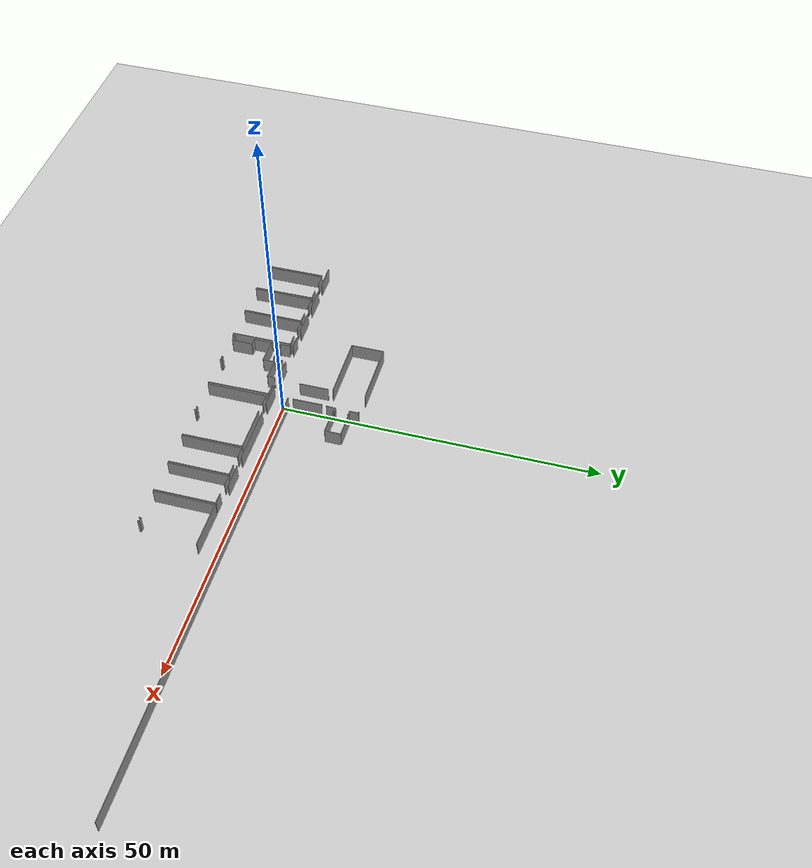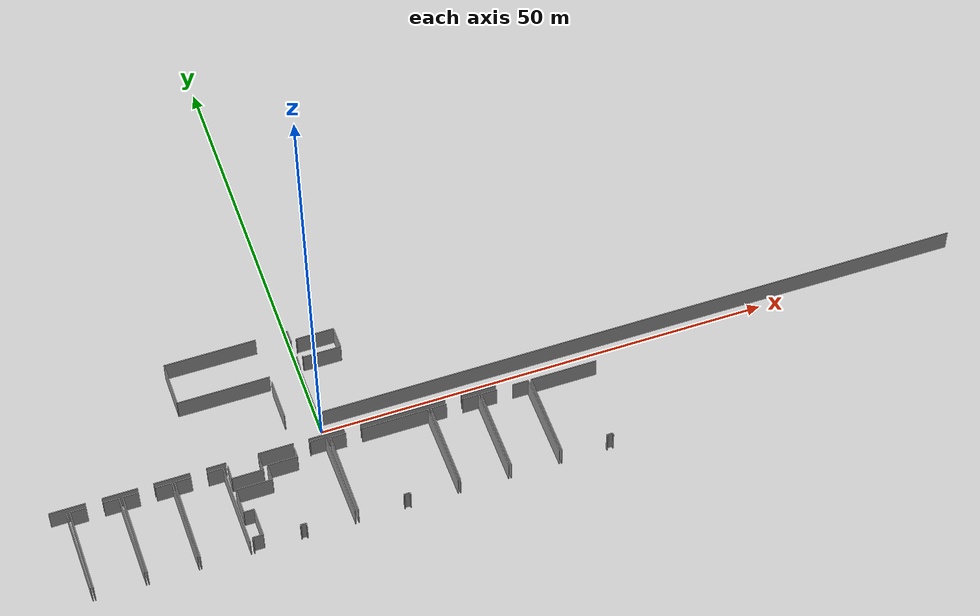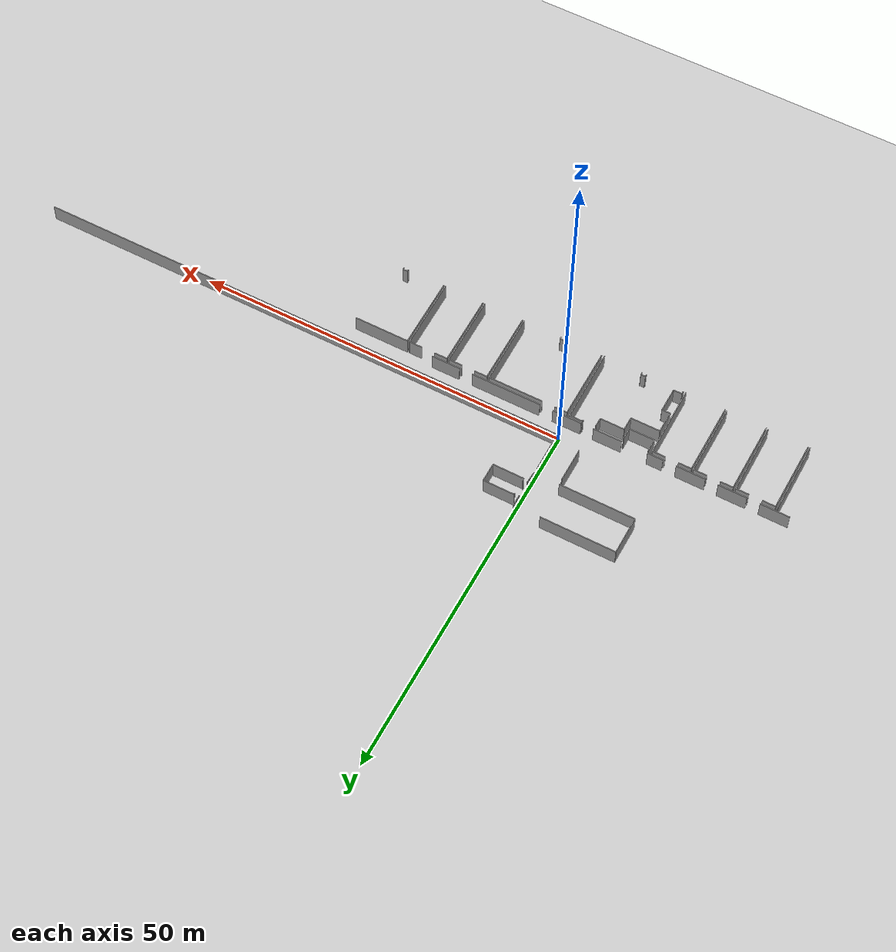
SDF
<sdf version="1.6">
 <world name="default">
  <model name="ground_plane">
   <static>1</static>
   <link name="link">
    <collision name="collision">
     <geometry><plane><normal>0 0 1</normal><size>100 100</size></plane></geometry>
     <surface><friction><ode><mu>100</mu><mu2>50</mu2></ode></friction></surface>
    </collision>
    <visual name="visual">
     <cast_shadows>0</cast_shadows>
     <geometry><plane><normal>0 0 1</normal><size>100 100</size></plane></geometry>
     <material>
      <script><uri>file://media/materials/scripts/gazebo.material</uri><name>Gazebo/Grey</name></script>
     </material>
    </visual>
   </link>
  </model>
  <model name="0510045907_A_40_1_105">
   <static>1</static>
   <link name="Wall_34">
    <collision name="Wall_34_Collision">
     <geometry><box><size>72.8135472733 0.1 2.5</size></box></geometry>
     <pose>36.4067736366 0 1.25 0 0 0</pose>
    </collision>
    <visual name="Wall_34_Visual">
     <pose>36.4067736366 0 1.25 0 0 0</pose>
     <geometry><box><size>72.8135472733 0.1 2.5</size></box></geometry>
     <material>
      <script><uri>file://media/materials/scripts/gazebo.material</uri><name>Gazebo/Grey</name></script>
      <ambient>1 1 1 1</ambient>
     </material>
    </visual>
    <pose>83.46069869 -11.358789479 0 0 0 0.0</pose>
   </link>
   <link name="Wall_45">
    <collision name="Wall_45_Collision">
     <geometry><box><size>3.83924037778 0.1 2.5</size></box></geometry>
     <pose>1.91962018889 0 1.25 0 0 0</pose>
    </collision>
    <visual name="Wall_45_Visual">
     <pose>1.91962018889 0 1.25 0 0 0</pose>
     <geometry><box><size>3.83924037778 0.1 2.5</size></box></geometry>
     <material>
      <script><uri>file://media/materials/scripts/gazebo.material</uri><name>Gazebo/Grey</name></script>
      <ambient>1 1 1 1</ambient>
     </material>
    </visual>
    <pose>102.392353001 -14.2241291764 0 0 0 3.14159265359</pose>
   </link>
   <link name="Wall_46">
    <collision name="Wall_46_Collision">
     <geometry><box><size>9.38153752412 0.1 2.5</size></box></geometry>
     <pose>4.69076876206 0 1.25 0 0 0</pose>
    </collision>
    <visual name="Wall_46_Visual">
     <pose>4.69076876206 0 1.25 0 0 0</pose>
     <geometry><box><size>9.38153752412 0.1 2.5</size></box></geometry>
     <material>
      <script><uri>file://media/materials/scripts/gazebo.material</uri><name>Gazebo/Grey</name></script>
      <ambient>1 1 1 1</ambient>
     </material>
    </visual>
    <pose>96.7500253884 -14.2241291764 0 0 0 3.14159265359</pose>
   </link>
   <link name="Wall_47">
    <collision name="Wall_47_Collision">
     <geometry><box><size>3.90042652585 0.1 2.5</size></box></geometry>
     <pose>1.95021326292 0 1.25 0 0 0</pose>
    </collision>
    <visual name="Wall_47_Visual">
     <pose>1.95021326292 0 1.25 0 0 0</pose>
     <geometry><box><size>3.90042652585 0.1 2.5</size></box></geometry>
     <material>
      <script><uri>file://media/materials/scripts/gazebo.material</uri><name>Gazebo/Grey</name></script>
      <ambient>1 1 1 1</ambient>
     </material>
    </visual>
    <pose>85.5940895704 -14.2241291764 0 0 0 3.14159265359</pose>
   </link>
   <link name="Wall_48">
    <collision name="Wall_48_Collision">
     <geometry><box><size>3.86615212755 0.1 2.5</size></box></geometry>
     <pose>1.93307606378 0 1.25 0 0 0</pose>
    </collision>
    <visual name="Wall_48_Visual">
     <pose>1.93307606378 0 1.25 0 0 0</pose>
     <geometry><box><size>3.86615212755 0.1 2.5</size></box></geometry>
     <material>
      <script><uri>file://media/materials/scripts/gazebo.material</uri><name>Gazebo/Grey</name></script>
      <ambient>1 1 1 1</ambient>
     </material>
    </visual>
    <pose>80.0167563725 -14.2241291764 0 0 0 3.14159265359</pose>
   </link>
   <link name="Wall_49">
    <collision name="Wall_49_Collision">
     <geometry><box><size>2.10343251752 0.1 2.5</size></box></geometry>
     <pose>1.05171625876 0 1.25 0 0 0</pose>
    </collision>
    <visual name="Wall_49_Visual">
     <pose>1.05171625876 0 1.25 0 0 0</pose>
     <geometry><box><size>2.10343251752 0.1 2.5</size></box></geometry>
     <material>
      <script><uri>file://media/materials/scripts/gazebo.material</uri><name>Gazebo/Grey</name></script>
      <ambient>1 1 1 1</ambient>
     </material>
    </visual>
    <pose>72.6784807556 -14.2241291764 0 0 0 3.14159265359</pose>
   </link>
   <link name="Wall_50">
    <collision name="Wall_50_Collision">
     <geometry><box><size>3.9192139738 0.1 2.5</size></box></geometry>
     <pose>1.9596069869 0 1.25 0 0 0</pose>
    </collision>
    <visual name="Wall_50_Visual">
     <pose>1.9596069869 0 1.25 0 0 0</pose>
     <geometry><box><size>3.9192139738 0.1 2.5</size></box></geometry>
     <material>
      <script><uri>file://media/materials/scripts/gazebo.material</uri><name>Gazebo/Grey</name></script>
      <ambient>1 1 1 1</ambient>
     </material>
    </visual>
    <pose>68.814105819 -14.2241291764 0 0 0 3.14159265359</pose>
   </link>
   <link name="Wall_51">
    <collision name="Wall_51_Collision">
     <geometry><box><size>3.83949426221 0.1 2.5</size></box></geometry>
     <pose>1.91974713111 0 1.25 0 0 0</pose>
    </collision>
    <visual name="Wall_51_Visual">
     <pose>1.91974713111 0 1.25 0 0 0</pose>
     <geometry><box><size>3.83949426221 0.1 2.5</size></box></geometry>
     <material>
      <script><uri>file://media/materials/scripts/gazebo.material</uri><name>Gazebo/Grey</name></script>
      <ambient>1 1 1 1</ambient>
     </material>
    </visual>
    <pose>63.2131613689 -14.2241291764 0 0 0 3.14159265359</pose>
   </link>
   <link name="Wall_52">
    <collision name="Wall_52_Collision">
     <geometry><box><size>3.90474256119 0.1 2.5</size></box></geometry>
     <pose>1.95237128059 0 1.25 0 0 0</pose>
    </collision>
    <visual name="Wall_52_Visual">
     <pose>1.95237128059 0 1.25 0 0 0</pose>
     <geometry><box><size>3.90474256119 0.1 2.5</size></box></geometry>
     <material>
      <script><uri>file://media/materials/scripts/gazebo.material</uri><name>Gazebo/Grey</name></script>
      <ambient>1 1 1 1</ambient>
     </material>
    </visual>
    <pose>57.6368437087 -14.2241291764 0 0 0 3.14159265359</pose>
   </link>
   <link name="Wall_90">
    <collision name="Wall_90_Collision">
     <geometry><box><size>9.59455603159 0.1 2.5</size></box></geometry>
     <pose>4.79727801579 0 1.25 0 0 0</pose>
    </collision>
    <visual name="Wall_90_Visual">
     <pose>4.79727801579 0 1.25 0 0 0</pose>
     <geometry><box><size>9.59455603159 0.1 2.5</size></box></geometry>
     <material>
      <script><uri>file://media/materials/scripts/gazebo.material</uri><name>Gazebo/Grey</name></script>
      <ambient>1 1 1 1</ambient>
     </material>
    </visual>
    <pose>55.5133543211 -14.7778511222 0 0 0 -1.56338709482</pose>
   </link>
   <link name="Wall_91">
    <collision name="Wall_91_Collision">
     <geometry><box><size>9.57753630547 0.1 2.5</size></box></geometry>
     <pose>4.78876815274 0 1.25 0 0 0</pose>
    </collision>
    <visual name="Wall_91_Visual">
     <pose>4.78876815274 0 1.25 0 0 0</pose>
     <geometry><box><size>9.57753630547 0.1 2.5</size></box></geometry>
     <material>
      <script><uri>file://media/materials/scripts/gazebo.material</uri><name>Gazebo/Grey</name></script>
      <ambient>1 1 1 1</ambient>
     </material>
    </visual>
    <pose>55.8515283843 -24.3553874276 0 0 0 1.57079632679</pose>
   </link>
   <link name="Wall_92">
    <collision name="Wall_92_Collision">
     <geometry><box><size>1.74926373515 0.1 2.5</size></box></geometry>
     <pose>0.874631867574 0 1.25 0 0 0</pose>
    </collision>
    <visual name="Wall_92_Visual">
     <pose>0.874631867574 0 1.25 0 0 0</pose>
     <geometry><box><size>1.74926373515 0.1 2.5</size></box></geometry>
     <material>
      <script><uri>file://media/materials/scripts/gazebo.material</uri><name>Gazebo/Grey</name></script>
      <ambient>1 1 1 1</ambient>
     </material>
    </visual>
    <pose>55.8515283843 -14.7778511222 0 0 0 0.0</pose>
   </link>
   <link name="Wall_93">
    <collision name="Wall_93_Collision">
     <geometry><box><size>1.72742967401 0.1 2.5</size></box></geometry>
     <pose>0.863714837006 0 1.25 0 0 0</pose>
    </collision>
    <visual name="Wall_93_Visual">
     <pose>0.863714837006 0 1.25 0 0 0</pose>
     <geometry><box><size>1.72742967401 0.1 2.5</size></box></geometry>
     <material>
      <script><uri>file://media/materials/scripts/gazebo.material</uri><name>Gazebo/Grey</name></script>
      <ambient>1 1 1 1</ambient>
     </material>
    </visual>
    <pose>59.3642733828 -14.7778511222 0 0 0 0.0</pose>
   </link>
   <link name="Wall_94">
    <collision name="Wall_94_Collision">
     <geometry><box><size>9.5780746944 0.1 2.5</size></box></geometry>
     <pose>4.7890373472 0 1.25 0 0 0</pose>
    </collision>
    <visual name="Wall_94_Visual">
     <pose>4.7890373472 0 1.25 0 0 0</pose>
     <geometry><box><size>9.5780746944 0.1 2.5</size></box></geometry>
     <material>
      <script><uri>file://media/materials/scripts/gazebo.material</uri><name>Gazebo/Grey</name></script>
      <ambient>1 1 1 1</ambient>
     </material>
    </visual>
    <pose>61.0917030568 -14.7778511222 0 0 0 -1.5601933947</pose>
   </link>
   <link name="Wall_95">
    <collision name="Wall_95_Collision">
     <geometry><box><size>9.60368640195 0.1 2.5</size></box></geometry>
     <pose>4.80184320097 0 1.25 0 0 0</pose>
    </collision>
    <visual name="Wall_95_Visual">
     <pose>4.80184320097 0 1.25 0 0 0</pose>
     <geometry><box><size>9.60368640195 0.1 2.5</size></box></geometry>
     <material>
      <script><uri>file://media/materials/scripts/gazebo.material</uri><name>Gazebo/Grey</name></script>
      <ambient>1 1 1 1</ambient>
     </material>
    </visual>
    <pose>61.4661825937 -24.3815375241 0 0 0 1.57079632679</pose>
   </link>
   <link name="Wall_96">
    <collision name="Wall_96_Collision">
     <geometry><box><size>1.69899461765 0.1 2.5</size></box></geometry>
     <pose>0.849497308825 0 1.25 0 0 0</pose>
    </collision>
    <visual name="Wall_96_Visual">
     <pose>0.849497308825 0 1.25 0 0 0</pose>
     <geometry><box><size>1.69899461765 0.1 2.5</size></box></geometry>
     <material>
      <script><uri>file://media/materials/scripts/gazebo.material</uri><name>Gazebo/Grey</name></script>
      <ambient>1 1 1 1</ambient>
     </material>
    </visual>
    <pose>61.4661825937 -14.7778511222 0 0 0 0.0</pose>
   </link>
   <link name="Wall_97">
    <collision name="Wall_97_Collision">
     <geometry><box><size>1.82085914492 0.1 2.5</size></box></geometry>
     <pose>0.910429572459 0 1.25 0 0 0</pose>
    </collision>
    <visual name="Wall_97_Visual">
     <pose>0.910429572459 0 1.25 0 0 0</pose>
     <geometry><box><size>1.82085914492 0.1 2.5</size></box></geometry>
     <material>
      <script><uri>file://media/materials/scripts/gazebo.material</uri><name>Gazebo/Grey</name></script>
      <ambient>1 1 1 1</ambient>
     </material>
    </visual>
    <pose>64.9276429369 -14.7778511222 0 0 0 0.0</pose>
   </link>
   <link name="Wall_98">
    <collision name="Wall_98_Collision">
     <geometry><box><size>9.60370527866 0.1 2.5</size></box></geometry>
     <pose>4.80185263933 0 1.25 0 0 0</pose>
    </collision>
    <visual name="Wall_98_Visual">
     <pose>4.80185263933 0 1.25 0 0 0</pose>
     <geometry><box><size>9.60370527866 0.1 2.5</size></box></geometry>
     <material>
      <script><uri>file://media/materials/scripts/gazebo.material</uri><name>Gazebo/Grey</name></script>
      <ambient>1 1 1 1</ambient>
     </material>
    </visual>
    <pose>66.7485020819 -14.7778511222 0 0 0 -1.56881361863</pose>
   </link>
   <link name="Wall_99">
    <collision name="Wall_99_Collision">
     <geometry><box><size>9.62196608104 0.1 2.5</size></box></geometry>
     <pose>4.81098304052 0 1.25 0 0 0</pose>
    </collision>
    <visual name="Wall_99_Visual">
     <pose>4.81098304052 0 1.25 0 0 0</pose>
     <geometry><box><size>9.62196608104 0.1 2.5</size></box></geometry>
     <material>
      <script><uri>file://media/materials/scripts/gazebo.material</uri><name>Gazebo/Grey</name></script>
      <ambient>1 1 1 1</ambient>
     </material>
    </visual>
    <pose>67.027267188 -24.3889001726 0 0 0 1.57079632679</pose>
   </link>
   <link name="Wall_100">
    <collision name="Wall_100_Collision">
     <geometry><box><size>1.75357977049 0.1 2.5</size></box></geometry>
     <pose>0.876789885244 0 1.25 0 0 0</pose>
    </collision>
    <visual name="Wall_100_Visual">
     <pose>0.876789885244 0 1.25 0 0 0</pose>
     <geometry><box><size>1.75357977049 0.1 2.5</size></box></geometry>
     <material>
      <script><uri>file://media/materials/scripts/gazebo.material</uri><name>Gazebo/Grey</name></script>
      <ambient>1 1 1 1</ambient>
     </material>
    </visual>
    <pose>67.027267188 -14.7669340916 0 0 0 0.0</pose>
   </link>
   <link name="Wall_101">
    <collision name="Wall_101_Collision">
     <geometry><box><size>1.74190108663 0.1 2.5</size></box></geometry>
     <pose>0.870950543313 0 1.25 0 0 0</pose>
    </collision>
    <visual name="Wall_101_Visual">
     <pose>0.870950543313 0 1.25 0 0 0</pose>
     <geometry><box><size>1.74190108663 0.1 2.5</size></box></geometry>
     <material>
      <script><uri>file://media/materials/scripts/gazebo.material</uri><name>Gazebo/Grey</name></script>
      <ambient>1 1 1 1</ambient>
     </material>
    </visual>
    <pose>70.5100538235 -14.7669340916 0 0 0 0.0</pose>
   </link>
   <link name="Wall_102">
    <collision name="Wall_102_Collision">
     <geometry><box><size>9.62226552389 0.1 2.5</size></box></geometry>
     <pose>4.81113276194 0 1.25 0 0 0</pose>
    </collision>
    <visual name="Wall_102_Visual">
     <pose>4.81113276194 0 1.25 0 0 0</pose>
     <geometry><box><size>9.62226552389 0.1 2.5</size></box></geometry>
     <material>
      <script><uri>file://media/materials/scripts/gazebo.material</uri><name>Gazebo/Grey</name></script>
      <ambient>1 1 1 1</ambient>
     </material>
    </visual>
    <pose>72.2519549101 -14.7669340916 0 0 0 -1.56290710025</pose>
   </link>
   <link name="Wall_103">
    <collision name="Wall_103_Collision">
     <geometry><box><size>0.290443789987 0.1 2.5</size></box></geometry>
     <pose>0.145221894993 0 1.25 0 0 0</pose>
    </collision>
    <visual name="Wall_103_Visual">
     <pose>0.145221894993 0 1.25 0 0 0</pose>
     <geometry><box><size>0.290443789987 0.1 2.5</size></box></geometry>
     <material>
      <script><uri>file://media/materials/scripts/gazebo.material</uri><name>Gazebo/Grey</name></script>
      <ambient>1 1 1 1</ambient>
     </material>
    </visual>
    <pose>78.3802173251 -24.4252056464 0 0 0 1.57079632679</pose>
   </link>
   <link name="Wall_104">
    <collision name="Wall_104_Collision">
     <geometry><box><size>0.609576520768 0.1 2.5</size></box></geometry>
     <pose>0.304788260384 0 1.25 0 0 0</pose>
    </collision>
    <visual name="Wall_104_Visual">
     <pose>0.304788260384 0 1.25 0 0 0</pose>
     <geometry><box><size>0.609576520768 0.1 2.5</size></box></geometry>
     <material>
      <script><uri>file://media/materials/scripts/gazebo.material</uri><name>Gazebo/Grey</name></script>
      <ambient>1 1 1 1</ambient>
     </material>
    </visual>
    <pose>78.3802173251 -24.1347618564 0 0 0 3.14159265359</pose>
   </link>
   <link name="Wall_105">
    <collision name="Wall_105_Collision">
     <geometry><box><size>0.246775667716 0.1 2.5</size></box></geometry>
     <pose>0.123387833858 0 1.25 0 0 0</pose>
    </collision>
    <visual name="Wall_105_Visual">
     <pose>0.123387833858 0 1.25 0 0 0</pose>
     <geometry><box><size>0.246775667716 0.1 2.5</size></box></geometry>
     <material>
      <script><uri>file://media/materials/scripts/gazebo.material</uri><name>Gazebo/Grey</name></script>
      <ambient>1 1 1 1</ambient>
     </material>
    </visual>
    <pose>77.7706408043 -24.1347618564 0 0 0 -1.57079632679</pose>
   </link>
   <link name="Wall_106">
    <collision name="Wall_106_Collision">
     <geometry><box><size>0.399614095664 0.1 2.5</size></box></geometry>
     <pose>0.199807047832 0 1.25 0 0 0</pose>
    </collision>
    <visual name="Wall_106_Visual">
     <pose>0.199807047832 0 1.25 0 0 0</pose>
     <geometry><box><size>0.399614095664 0.1 2.5</size></box></geometry>
     <material>
      <script><uri>file://media/materials/scripts/gazebo.material</uri><name>Gazebo/Grey</name></script>
      <ambient>1 1 1 1</ambient>
     </material>
    </visual>
    <pose>72.6909210927 -24.3815375241 0 0 0 1.57079632679</pose>
   </link>
   <link name="Wall_107">
    <collision name="Wall_107_Collision">
     <geometry><box><size>1.14501878745 0.1 2.5</size></box></geometry>
     <pose>0.572509393724 0 1.25 0 0 0</pose>
    </collision>
    <visual name="Wall_107_Visual">
     <pose>0.572509393724 0 1.25 0 0 0</pose>
     <geometry><box><size>1.14501878745 0.1 2.5</size></box></geometry>
     <material>
      <script><uri>file://media/materials/scripts/gazebo.material</uri><name>Gazebo/Grey</name></script>
      <ambient>1 1 1 1</ambient>
     </material>
    </visual>
    <pose>72.6909210927 -23.9819234285 0 0 0 0.0</pose>
   </link>
   <link name="Wall_108">
    <collision name="Wall_108_Collision">
     <geometry><box><size>3.27079313496 0.1 2.5</size></box></geometry>
     <pose>1.63539656748 0 1.25 0 0 0</pose>
    </collision>
    <visual name="Wall_108_Visual">
     <pose>1.63539656748 0 1.25 0 0 0</pose>
     <geometry><box><size>3.27079313496 0.1 2.5</size></box></geometry>
     <material>
      <script><uri>file://media/materials/scripts/gazebo.material</uri><name>Gazebo/Grey</name></script>
      <ambient>1 1 1 1</ambient>
     </material>
    </visual>
    <pose>73.8359398802 -23.9819234285 0 0 0 1.57079632679</pose>
   </link>
   <link name="Wall_109">
    <collision name="Wall_109_Collision">
     <geometry><box><size>1.10719000711 0.1 2.5</size></box></geometry>
     <pose>0.553595003554 0 1.25 0 0 0</pose>
    </collision>
    <visual name="Wall_109_Visual">
     <pose>0.553595003554 0 1.25 0 0 0</pose>
     <geometry><box><size>1.10719000711 0.1 2.5</size></box></geometry>
     <material>
      <script><uri>file://media/materials/scripts/gazebo.material</uri><name>Gazebo/Grey</name></script>
      <ambient>1 1 1 1</ambient>
     </material>
    </visual>
    <pose>73.8359398802 -20.7111302935 0 0 0 3.14159265359</pose>
   </link>
   <link name="Wall_110">
    <collision name="Wall_110_Collision">
     <geometry><box><size>2.90773839748 0.1 2.5</size></box></geometry>
     <pose>1.45386919874 0 1.25 0 0 0</pose>
    </collision>
    <visual name="Wall_110_Visual">
     <pose>1.45386919874 0 1.25 0 0 0</pose>
     <geometry><box><size>2.90773839748 0.1 2.5</size></box></geometry>
     <material>
      <script><uri>file://media/materials/scripts/gazebo.material</uri><name>Gazebo/Grey</name></script>
      <ambient>1 1 1 1</ambient>
     </material>
    </visual>
    <pose>72.7287498731 -20.7111302935 0 0 0 1.57079632679</pose>
   </link>
   <link name="Wall_111">
    <collision name="Wall_111_Collision">
     <geometry><box><size>3.94104803493 0.1 2.5</size></box></geometry>
     <pose>1.97052401747 0 1.25 0 0 0</pose>
    </collision>
    <visual name="Wall_111_Visual">
     <pose>1.97052401747 0 1.25 0 0 0</pose>
     <geometry><box><size>3.94104803493 0.1 2.5</size></box></geometry>
     <material>
      <script><uri>file://media/materials/scripts/gazebo.material</uri><name>Gazebo/Grey</name></script>
      <ambient>1 1 1 1</ambient>
     </material>
    </visual>
    <pose>72.7287498731 -17.803391896 0 0 0 0.0</pose>
   </link>
   <link name="Wall_112">
    <collision name="Wall_112_Collision">
     <geometry><box><size>1.85589519651 0.1 2.5</size></box></geometry>
     <pose>0.927947598253 0 1.25 0 0 0</pose>
    </collision>
    <visual name="Wall_112_Visual">
     <pose>0.927947598253 0 1.25 0 0 0</pose>
     <geometry><box><size>1.85589519651 0.1 2.5</size></box></geometry>
     <material>
      <script><uri>file://media/materials/scripts/gazebo.material</uri><name>Gazebo/Grey</name></script>
      <ambient>1 1 1 1</ambient>
     </material>
    </visual>
    <pose>76.669797908 -17.803391896 0 0 0 1.57079632679</pose>
   </link>
   <link name="Wall_113">
    <collision name="Wall_113_Collision">
     <geometry><box><size>3.2654615619 0.1 2.5</size></box></geometry>
     <pose>1.63273078095 0 1.25 0 0 0</pose>
    </collision>
    <visual name="Wall_113_Visual">
     <pose>1.63273078095 0 1.25 0 0 0</pose>
     <geometry><box><size>3.2654615619 0.1 2.5</size></box></geometry>
     <material>
      <script><uri>file://media/materials/scripts/gazebo.material</uri><name>Gazebo/Grey</name></script>
      <ambient>1 1 1 1</ambient>
     </material>
    </visual>
    <pose>76.669797908 -15.9474966995 0 0 0 0.0</pose>
   </link>
   <link name="Wall_114">
    <collision name="Wall_114_Collision">
     <geometry><box><size>1.20747435767 0.1 2.5</size></box></geometry>
     <pose>0.603737178836 0 1.25 0 0 0</pose>
    </collision>
    <visual name="Wall_114_Visual">
     <pose>0.603737178836 0 1.25 0 0 0</pose>
     <geometry><box><size>1.20747435767 0.1 2.5</size></box></geometry>
     <material>
      <script><uri>file://media/materials/scripts/gazebo.material</uri><name>Gazebo/Grey</name></script>
      <ambient>1 1 1 1</ambient>
     </material>
    </visual>
    <pose>79.9352594699 -15.9474966995 0 0 0 1.57079632679</pose>
   </link>
   <link name="Wall_115">
    <collision name="Wall_115_Collision">
     <geometry><box><size>0.174926373515 0.1 2.5</size></box></geometry>
     <pose>0.0874631867574 0 1.25 0 0 0</pose>
    </collision>
    <visual name="Wall_115_Visual">
     <pose>0.0874631867574 0 1.25 0 0 0</pose>
     <geometry><box><size>0.174926373515 0.1 2.5</size></box></geometry>
     <material>
      <script><uri>file://media/materials/scripts/gazebo.material</uri><name>Gazebo/Grey</name></script>
      <ambient>1 1 1 1</ambient>
     </material>
    </visual>
    <pose>81.680968823 -14.7400223418 0 0 0 1.57079632679</pose>
   </link>
   <link name="Wall_116">
    <collision name="Wall_116_Collision">
     <geometry><box><size>1.75459530822 0.1 2.5</size></box></geometry>
     <pose>0.877297654108 0 1.25 0 0 0</pose>
    </collision>
    <visual name="Wall_116_Visual">
     <pose>0.877297654108 0 1.25 0 0 0</pose>
     <geometry><box><size>1.75459530822 0.1 2.5</size></box></geometry>
     <material>
      <script><uri>file://media/materials/scripts/gazebo.material</uri><name>Gazebo/Grey</name></script>
      <ambient>1 1 1 1</ambient>
     </material>
    </visual>
    <pose>81.680968823 -14.5650959683 0 0 0 0.0</pose>
   </link>
   <link name="Wall_117">
    <collision name="Wall_117_Collision">
     <geometry><box><size>9.86092679163 0.1 2.5</size></box></geometry>
     <pose>4.93046339581 0 1.25 0 0 0</pose>
    </collision>
    <visual name="Wall_117_Visual">
     <pose>4.93046339581 0 1.25 0 0 0</pose>
     <geometry><box><size>9.86092679163 0.1 2.5</size></box></geometry>
     <material>
      <script><uri>file://media/materials/scripts/gazebo.material</uri><name>Gazebo/Grey</name></script>
      <ambient>1 1 1 1</ambient>
     </material>
    </visual>
    <pose>83.4355641312 -14.5650959683 0 0 0 -1.55792271714</pose>
   </link>
   <link name="Wall_118">
    <collision name="Wall_118_Collision">
     <geometry><box><size>3.40890626587 0.1 2.5</size></box></geometry>
     <pose>1.70445313293 0 1.25 0 0 0</pose>
    </collision>
    <visual name="Wall_118_Visual">
     <pose>1.70445313293 0 1.25 0 0 0</pose>
     <geometry><box><size>3.40890626587 0.1 2.5</size></box></geometry>
     <material>
      <script><uri>file://media/materials/scripts/gazebo.material</uri><name>Gazebo/Grey</name></script>
      <ambient>1 1 1 1</ambient>
     </material>
    </visual>
    <pose>72.7284959886 -16.3092820148 0 0 0 0.0</pose>
   </link>
   <link name="Wall_119">
    <collision name="Wall_119_Collision">
     <geometry><box><size>1.62409871027 0.1 2.5</size></box></geometry>
     <pose>0.812049355134 0 1.25 0 0 0</pose>
    </collision>
    <visual name="Wall_119_Visual">
     <pose>0.812049355134 0 1.25 0 0 0</pose>
     <geometry><box><size>1.62409871027 0.1 2.5</size></box></geometry>
     <material>
      <script><uri>file://media/materials/scripts/gazebo.material</uri><name>Gazebo/Grey</name></script>
      <ambient>1 1 1 1</ambient>
     </material>
    </visual>
    <pose>76.1374022545 -16.3092820148 0 0 0 1.57079632679</pose>
   </link>
   <link name="Wall_120">
    <collision name="Wall_120_Collision">
     <geometry><box><size>1.62445499047 0.1 2.5</size></box></geometry>
     <pose>0.812227495234 0 1.25 0 0 0</pose>
    </collision>
    <visual name="Wall_120_Visual">
     <pose>0.812227495234 0 1.25 0 0 0</pose>
     <geometry><box><size>1.62445499047 0.1 2.5</size></box></geometry>
     <material>
      <script><uri>file://media/materials/scripts/gazebo.material</uri><name>Gazebo/Grey</name></script>
      <ambient>1 1 1 1</ambient>
     </material>
    </visual>
    <pose>72.7625165025 -14.6851833046 0 0 0 -1.59174058283</pose>
   </link>
   <link name="Wall_121">
    <collision name="Wall_121_Collision">
     <geometry><box><size>0.249568396466 0.1 2.5</size></box></geometry>
     <pose>0.124784198233 0 1.25 0 0 0</pose>
    </collision>
    <visual name="Wall_121_Visual">
     <pose>0.124784198233 0 1.25 0 0 0</pose>
     <geometry><box><size>0.249568396466 0.1 2.5</size></box></geometry>
     <material>
      <script><uri>file://media/materials/scripts/gazebo.material</uri><name>Gazebo/Grey</name></script>
      <ambient>1 1 1 1</ambient>
     </material>
    </visual>
    <pose>89.5963237534 -24.3754442978 0 0 0 1.57079632679</pose>
   </link>
   <link name="Wall_122">
    <collision name="Wall_122_Collision">
     <geometry><box><size>0.652736874175 0.1 2.5</size></box></geometry>
     <pose>0.326368437087 0 1.25 0 0 0</pose>
    </collision>
    <visual name="Wall_122_Visual">
     <pose>0.326368437087 0 1.25 0 0 0</pose>
     <geometry><box><size>0.652736874175 0.1 2.5</size></box></geometry>
     <material>
      <script><uri>file://media/materials/scripts/gazebo.material</uri><name>Gazebo/Grey</name></script>
      <ambient>1 1 1 1</ambient>
     </material>
    </visual>
    <pose>89.5963237534 -24.1258759013 0 0 0 3.14159265359</pose>
   </link>
   <link name="Wall_123">
    <collision name="Wall_123_Collision">
     <geometry><box><size>0.218340611354 0.1 2.5</size></box></geometry>
     <pose>0.109170305677 0 1.25 0 0 0</pose>
    </collision>
    <visual name="Wall_123_Visual">
     <pose>0.109170305677 0 1.25 0 0 0</pose>
     <geometry><box><size>0.218340611354 0.1 2.5</size></box></geometry>
     <material>
      <script><uri>file://media/materials/scripts/gazebo.material</uri><name>Gazebo/Grey</name></script>
      <ambient>1 1 1 1</ambient>
     </material>
    </visual>
    <pose>88.9435868793 -24.1258759013 0 0 0 -1.57079632679</pose>
   </link>
   <link name="Wall_124">
    <collision name="Wall_124_Collision">
     <geometry><box><size>9.54935513354 0.1 2.5</size></box></geometry>
     <pose>4.77467756677 0 1.25 0 0 0</pose>
    </collision>
    <visual name="Wall_124_Visual">
     <pose>4.77467756677 0 1.25 0 0 0</pose>
     <geometry><box><size>9.54935513354 0.1 2.5</size></box></geometry>
     <material>
      <script><uri>file://media/materials/scripts/gazebo.material</uri><name>Gazebo/Grey</name></script>
      <ambient>1 1 1 1</ambient>
     </material>
    </visual>
    <pose>83.9306387732 -24.3442165126 0 0 0 1.57079632679</pose>
   </link>
   <link name="Wall_125">
    <collision name="Wall_125_Collision">
     <geometry><box><size>1.6682746014 0.1 2.5</size></box></geometry>
     <pose>0.834137300701 0 1.25 0 0 0</pose>
    </collision>
    <visual name="Wall_125_Visual">
     <pose>0.834137300701 0 1.25 0 0 0</pose>
     <geometry><box><size>1.6682746014 0.1 2.5</size></box></geometry>
     <material>
      <script><uri>file://media/materials/scripts/gazebo.material</uri><name>Gazebo/Grey</name></script>
      <ambient>1 1 1 1</ambient>
     </material>
    </visual>
    <pose>83.9306387732 -14.7948613791 0 0 0 0.0</pose>
   </link>
   <link name="Wall_126">
    <collision name="Wall_126_Collision">
     <geometry><box><size>7.37178836194 0.1 2.5</size></box></geometry>
     <pose>3.68589418097 0 1.25 0 0 0</pose>
    </collision>
    <visual name="Wall_126_Visual">
     <pose>3.68589418097 0 1.25 0 0 0</pose>
     <geometry><box><size>7.37178836194 0.1 2.5</size></box></geometry>
     <material>
      <script><uri>file://media/materials/scripts/gazebo.material</uri><name>Gazebo/Grey</name></script>
      <ambient>1 1 1 1</ambient>
     </material>
    </visual>
    <pose>87.3309129684 -14.7948613791 0 0 0 0.0</pose>
   </link>
   <link name="Wall_127">
    <collision name="Wall_127_Collision">
     <geometry><box><size>9.58088971992 0.1 2.5</size></box></geometry>
     <pose>4.79044485996 0 1.25 0 0 0</pose>
    </collision>
    <visual name="Wall_127_Visual">
     <pose>4.79044485996 0 1.25 0 0 0</pose>
     <geometry><box><size>9.58088971992 0.1 2.5</size></box></geometry>
     <material>
      <script><uri>file://media/materials/scripts/gazebo.material</uri><name>Gazebo/Grey</name></script>
      <ambient>1 1 1 1</ambient>
     </material>
    </visual>
    <pose>94.7027013304 -14.7948613791 0 0 0 -1.56279352966</pose>
   </link>
   <link name="Wall_128">
    <collision name="Wall_128_Collision">
     <geometry><box><size>9.60800243729 0.1 2.5</size></box></geometry>
     <pose>4.80400121865 0 1.25 0 0 0</pose>
    </collision>
    <visual name="Wall_128_Visual">
     <pose>4.80400121865 0 1.25 0 0 0</pose>
     <geometry><box><size>9.60800243729 0.1 2.5</size></box></geometry>
     <material>
      <script><uri>file://media/materials/scripts/gazebo.material</uri><name>Gazebo/Grey</name></script>
      <ambient>1 1 1 1</ambient>
     </material>
    </visual>
    <pose>95.029958363 -24.3815375241 0 0 0 1.57079632679</pose>
   </link>
   <link name="Wall_129">
    <collision name="Wall_129_Collision">
     <geometry><box><size>1.72006702549 0.1 2.5</size></box></geometry>
     <pose>0.860033512745 0 1.25 0 0 0</pose>
    </collision>
    <visual name="Wall_129_Visual">
     <pose>0.860033512745 0 1.25 0 0 0</pose>
     <geometry><box><size>1.72006702549 0.1 2.5</size></box></geometry>
     <material>
      <script><uri>file://media/materials/scripts/gazebo.material</uri><name>Gazebo/Grey</name></script>
      <ambient>1 1 1 1</ambient>
     </material>
    </visual>
    <pose>95.029958363 -14.7735350868 0 0 0 0.0</pose>
   </link>
   <link name="Wall_130">
    <collision name="Wall_130_Collision">
     <geometry><box><size>1.8175586473 0.1 2.5</size></box></geometry>
     <pose>0.908779323652 0 1.25 0 0 0</pose>
    </collision>
    <visual name="Wall_130_Visual">
     <pose>0.908779323652 0 1.25 0 0 0</pose>
     <geometry><box><size>1.8175586473 0.1 2.5</size></box></geometry>
     <material>
      <script><uri>file://media/materials/scripts/gazebo.material</uri><name>Gazebo/Grey</name></script>
      <ambient>1 1 1 1</ambient>
     </material>
    </visual>
    <pose>98.5195998781 -14.7735350868 0 0 0 0.0</pose>
   </link>
   <link name="Wall_131">
    <collision name="Wall_131_Collision">
     <geometry><box><size>9.6080040608 0.1 2.5</size></box></geometry>
     <pose>4.8040020304 0 1.25 0 0 0</pose>
    </collision>
    <visual name="Wall_131_Visual">
     <pose>4.8040020304 0 1.25 0 0 0</pose>
     <geometry><box><size>9.6080040608 0.1 2.5</size></box></geometry>
     <material>
      <script><uri>file://media/materials/scripts/gazebo.material</uri><name>Gazebo/Grey</name></script>
      <ambient>1 1 1 1</ambient>
     </material>
    </visual>
    <pose>100.337158525 -14.7735350868 0 0 0 -1.57021499296</pose>
   </link>
   <link name="Wall_132">
    <collision name="Wall_132_Collision">
     <geometry><box><size>9.59962425104 0.1 2.5</size></box></geometry>
     <pose>4.79981212552 0 1.25 0 0 0</pose>
    </collision>
    <visual name="Wall_132_Visual">
     <pose>4.79981212552 0 1.25 0 0 0</pose>
     <geometry><box><size>9.59962425104 0.1 2.5</size></box></geometry>
     <material>
      <script><uri>file://media/materials/scripts/gazebo.material</uri><name>Gazebo/Grey</name></script>
      <ambient>1 1 1 1</ambient>
     </material>
    </visual>
    <pose>100.627348431 -24.3754442978 0 0 0 1.57079632679</pose>
   </link>
   <link name="Wall_133">
    <collision name="Wall_133_Collision">
     <geometry><box><size>1.71702041231 0.1 2.5</size></box></geometry>
     <pose>0.858510206154 0 1.25 0 0 0</pose>
    </collision>
    <visual name="Wall_133_Visual">
     <pose>0.858510206154 0 1.25 0 0 0</pose>
     <geometry><box><size>1.71702041231 0.1 2.5</size></box></geometry>
     <material>
      <script><uri>file://media/materials/scripts/gazebo.material</uri><name>Gazebo/Grey</name></script>
      <ambient>1 1 1 1</ambient>
     </material>
    </visual>
    <pose>100.627348431 -14.7758200467 0 0 0 0.0</pose>
   </link>
   <link name="Wall_134">
    <collision name="Wall_134_Collision">
     <geometry><box><size>1.79445516401 0.1 2.5</size></box></geometry>
     <pose>0.897227582005 0 1.25 0 0 0</pose>
    </collision>
    <visual name="Wall_134_Visual">
     <pose>0.897227582005 0 1.25 0 0 0</pose>
     <geometry><box><size>1.79445516401 0.1 2.5</size></box></geometry>
     <material>
      <script><uri>file://media/materials/scripts/gazebo.material</uri><name>Gazebo/Grey</name></script>
      <ambient>1 1 1 1</ambient>
     </material>
    </visual>
    <pose>104.129938052 -14.7758200467 0 0 0 0.0</pose>
   </link>
   <link name="Wall_135">
    <collision name="Wall_135_Collision">
     <geometry><box><size>9.59974039889 0.1 2.5</size></box></geometry>
     <pose>4.79987019945 0 1.25 0 0 0</pose>
    </collision>
    <visual name="Wall_135_Visual">
     <pose>4.79987019945 0 1.25 0 0 0</pose>
     <geometry><box><size>9.59974039889 0.1 2.5</size></box></geometry>
     <material>
      <script><uri>file://media/materials/scripts/gazebo.material</uri><name>Gazebo/Grey</name></script>
      <ambient>1 1 1 1</ambient>
     </material>
    </visual>
    <pose>105.924393216 -14.7758200467 0 0 0 -1.56587716307</pose>
   </link>
   <link name="Wall_136">
    <collision name="Wall_136_Collision">
     <geometry><box><size>0.276987915101 0.1 2.5</size></box></geometry>
     <pose>0.138493957551 0 1.25 0 0 0</pose>
    </collision>
    <visual name="Wall_136_Visual">
     <pose>0.138493957551 0 1.25 0 0 0</pose>
     <geometry><box><size>0.276987915101 0.1 2.5</size></box></geometry>
     <material>
      <script><uri>file://media/materials/scripts/gazebo.material</uri><name>Gazebo/Grey</name></script>
      <ambient>1 1 1 1</ambient>
     </material>
    </visual>
    <pose>111.971666497 -24.3980400122 0 0 0 1.57079632679</pose>
   </link>
   <link name="Wall_137">
    <collision name="Wall_137_Collision">
     <geometry><box><size>0.639027114857 0.1 2.5</size></box></geometry>
     <pose>0.319513557429 0 1.25 0 0 0</pose>
    </collision>
    <visual name="Wall_137_Visual">
     <pose>0.319513557429 0 1.25 0 0 0</pose>
     <geometry><box><size>0.639027114857 0.1 2.5</size></box></geometry>
     <material>
      <script><uri>file://media/materials/scripts/gazebo.material</uri><name>Gazebo/Grey</name></script>
      <ambient>1 1 1 1</ambient>
     </material>
    </visual>
    <pose>111.971666497 -24.1210520971 0 0 0 3.14159265359</pose>
   </link>
   <link name="Wall_138">
    <collision name="Wall_138_Collision">
     <geometry><box><size>0.282065603737 0.1 2.5</size></box></geometry>
     <pose>0.141032801869 0 1.25 0 0 0</pose>
    </collision>
    <visual name="Wall_138_Visual">
     <pose>0.141032801869 0 1.25 0 0 0</pose>
     <geometry><box><size>0.282065603737 0.1 2.5</size></box></geometry>
     <material>
      <script><uri>file://media/materials/scripts/gazebo.material</uri><name>Gazebo/Grey</name></script>
      <ambient>1 1 1 1</ambient>
     </material>
    </visual>
    <pose>111.332639383 -24.1210520971 0 0 0 -1.57079632679</pose>
   </link>
   <link name="Wall_139">
    <collision name="Wall_139_Collision">
     <geometry><box><size>9.64100741343 0.1 2.5</size></box></geometry>
     <pose>4.82050370671 0 1.25 0 0 0</pose>
    </collision>
    <visual name="Wall_139_Visual">
     <pose>4.82050370671 0 1.25 0 0 0</pose>
     <geometry><box><size>9.64100741343 0.1 2.5</size></box></geometry>
     <material>
      <script><uri>file://media/materials/scripts/gazebo.material</uri><name>Gazebo/Grey</name></script>
      <ambient>1 1 1 1</ambient>
     </material>
    </visual>
    <pose>106.228546766 -24.4031177008 0 0 0 1.57079632679</pose>
   </link>
   <link name="Wall_140">
    <collision name="Wall_140_Collision">
     <geometry><box><size>7.39235300091 0.1 2.5</size></box></geometry>
     <pose>3.69617650046 0 1.25 0 0 0</pose>
    </collision>
    <visual name="Wall_140_Visual">
     <pose>3.69617650046 0 1.25 0 0 0</pose>
     <geometry><box><size>7.39235300091 0.1 2.5</size></box></geometry>
     <material>
      <script><uri>file://media/materials/scripts/gazebo.material</uri><name>Gazebo/Grey</name></script>
      <ambient>1 1 1 1</ambient>
     </material>
    </visual>
    <pose>106.228546766 -14.7621102874 0 0 0 0.0</pose>
   </link>
   <link name="Wall_201">
    <collision name="Wall_201_Collision">
     <geometry><box><size>4.69381537524 0.1 2.5</size></box></geometry>
     <pose>2.34690768762 0 1.25 0 0 0</pose>
    </collision>
    <visual name="Wall_201_Visual">
     <pose>2.34690768762 0 1.25 0 0 0</pose>
     <geometry><box><size>4.69381537524 0.1 2.5</size></box></geometry>
     <material>
      <script><uri>file://media/materials/scripts/gazebo.material</uri><name>Gazebo/Grey</name></script>
      <ambient>1 1 1 1</ambient>
     </material>
    </visual>
    <pose>80.1586777699 -10.5918046105 0 0 0 1.57079632679</pose>
   </link>
   <link name="Wall_202">
    <collision name="Wall_202_Collision">
     <geometry><box><size>4.69394803512 0.1 2.5</size></box></geometry>
     <pose>2.34697401756 0 1.25 0 0 0</pose>
    </collision>
    <visual name="Wall_202_Visual">
     <pose>2.34697401756 0 1.25 0 0 0</pose>
     <geometry><box><size>4.69394803512 0.1 2.5</size></box></geometry>
     <material>
      <script><uri>file://media/materials/scripts/gazebo.material</uri><name>Gazebo/Grey</name></script>
      <ambient>1 1 1 1</ambient>
     </material>
    </visual>
    <pose>83.475423987 -5.8979892353 0 0 0 -1.56327807814</pose>
   </link>
   <link name="Wall_203">
    <collision name="Wall_203_Collision">
     <geometry><box><size>10.1830506753 0.1 2.5</size></box></geometry>
     <pose>5.09152533767 0 1.25 0 0 0</pose>
    </collision>
    <visual name="Wall_203_Visual">
     <pose>5.09152533767 0 1.25 0 0 0</pose>
     <geometry><box><size>10.1830506753 0.1 2.5</size></box></geometry>
     <material>
      <script><uri>file://media/materials/scripts/gazebo.material</uri><name>Gazebo/Grey</name></script>
      <ambient>1 1 1 1</ambient>
     </material>
    </visual>
    <pose>80.1236417183 -5.17492637351 0 0 0 3.14159265359</pose>
   </link>
   <link name="Wall_204">
    <collision name="Wall_204_Collision">
     <geometry><box><size>5.17492637351 0.1 2.5</size></box></geometry>
     <pose>2.58746318676 0 1.25 0 0 0</pose>
    </collision>
    <visual name="Wall_204_Visual">
     <pose>2.58746318676 0 1.25 0 0 0</pose>
     <geometry><box><size>5.17492637351 0.1 2.5</size></box></geometry>
     <material>
      <script><uri>file://media/materials/scripts/gazebo.material</uri><name>Gazebo/Grey</name></script>
      <ambient>1 1 1 1</ambient>
     </material>
    </visual>
    <pose>69.940591043 -5.17492637351 0 0 0 1.57079632679</pose>
   </link>
   <link name="Wall_205">
    <collision name="Wall_205_Collision">
     <geometry><box><size>10.1495379303 0.1 2.5</size></box></geometry>
     <pose>5.07476896517 0 1.25 0 0 0</pose>
    </collision>
    <visual name="Wall_205_Visual">
     <pose>5.07476896517 0 1.25 0 0 0</pose>
     <geometry><box><size>10.1495379303 0.1 2.5</size></box></geometry>
     <material>
      <script><uri>file://media/materials/scripts/gazebo.material</uri><name>Gazebo/Grey</name></script>
      <ambient>1 1 1 1</ambient>
     </material>
    </visual>
    <pose>69.940591043 -0.0 0 0 0 0.0</pose>
   </link>
   <link name="Wall_206">
    <collision name="Wall_206_Collision">
     <geometry><box><size>0.201838123286 0.1 2.5</size></box></geometry>
     <pose>0.100919061643 0 1.25 0 0 0</pose>
    </collision>
    <visual name="Wall_206_Visual">
     <pose>0.100919061643 0 1.25 0 0 0</pose>
     <geometry><box><size>0.201838123286 0.1 2.5</size></box></geometry>
     <material>
      <script><uri>file://media/materials/scripts/gazebo.material</uri><name>Gazebo/Grey</name></script>
      <ambient>1 1 1 1</ambient>
     </material>
    </visual>
    <pose>83.4355641312 -0.0 0 0 0 0.0</pose>
   </link>
   <link name="Wall_207">
    <collision name="Wall_207_Collision">
     <geometry><box><size>1.46288209607 0.1 2.5</size></box></geometry>
     <pose>0.731441048035 0 1.25 0 0 0</pose>
    </collision>
    <visual name="Wall_207_Visual">
     <pose>0.731441048035 0 1.25 0 0 0</pose>
     <geometry><box><size>1.46288209607 0.1 2.5</size></box></geometry>
     <material>
      <script><uri>file://media/materials/scripts/gazebo.material</uri><name>Gazebo/Grey</name></script>
      <ambient>1 1 1 1</ambient>
     </material>
    </visual>
    <pose>83.6374022545 -0.0 0 0 0 -1.57079632679</pose>
   </link>
   <link name="Wall_208">
    <collision name="Wall_208_Collision">
     <geometry><box><size>1.56838553887 0.1 2.5</size></box></geometry>
     <pose>0.784192769433 0 1.25 0 0 0</pose>
    </collision>
    <visual name="Wall_208_Visual">
     <pose>0.784192769433 0 1.25 0 0 0</pose>
     <geometry><box><size>1.56838553887 0.1 2.5</size></box></geometry>
     <material>
      <script><uri>file://media/materials/scripts/gazebo.material</uri><name>Gazebo/Grey</name></script>
      <ambient>1 1 1 1</ambient>
     </material>
    </visual>
    <pose>83.6374022545 -3.60922108256 0 0 0 -1.62926697842</pose>
   </link>
   <link name="Wall_209">
    <collision name="Wall_209_Collision">
     <geometry><box><size>2.54976134863 0.1 2.5</size></box></geometry>
     <pose>1.27488067432 0 1.25 0 0 0</pose>
    </collision>
    <visual name="Wall_209_Visual">
     <pose>1.27488067432 0 1.25 0 0 0</pose>
     <geometry><box><size>2.54976134863 0.1 2.5</size></box></geometry>
     <material>
      <script><uri>file://media/materials/scripts/gazebo.material</uri><name>Gazebo/Grey</name></script>
      <ambient>1 1 1 1</ambient>
     </material>
    </visual>
    <pose>88.4467350462 -3.86107443892 0 0 0 1.57079632679</pose>
   </link>
   <link name="Wall_210">
    <collision name="Wall_210_Collision">
     <geometry><box><size>4.1906164314 0.1 2.5</size></box></geometry>
     <pose>2.0953082157 0 1.25 0 0 0</pose>
    </collision>
    <visual name="Wall_210_Visual">
     <pose>2.0953082157 0 1.25 0 0 0</pose>
     <geometry><box><size>4.1906164314 0.1 2.5</size></box></geometry>
     <material>
      <script><uri>file://media/materials/scripts/gazebo.material</uri><name>Gazebo/Grey</name></script>
      <ambient>1 1 1 1</ambient>
     </material>
    </visual>
    <pose>88.4467350462 -1.31131309028 0 0 0 3.14159265359</pose>
   </link>
   <link name="Wall_211">
    <collision name="Wall_211_Collision">
     <geometry><box><size>0.176703564537 0.1 2.5</size></box></geometry>
     <pose>0.0883517822687 0 1.25 0 0 0</pose>
    </collision>
    <visual name="Wall_211_Visual">
     <pose>0.0883517822687 0 1.25 0 0 0</pose>
     <geometry><box><size>0.176703564537 0.1 2.5</size></box></geometry>
     <material>
      <script><uri>file://media/materials/scripts/gazebo.material</uri><name>Gazebo/Grey</name></script>
      <ambient>1 1 1 1</ambient>
     </material>
    </visual>
    <pose>84.2561186148 -1.31131309028 0 0 0 -1.57079632679</pose>
   </link>
   <link name="Wall_212">
    <collision name="Wall_212_Collision">
     <geometry><box><size>0.203107545445 0.1 2.5</size></box></geometry>
     <pose>0.101553772723 0 1.25 0 0 0</pose>
    </collision>
    <visual name="Wall_212_Visual">
     <pose>0.101553772723 0 1.25 0 0 0</pose>
     <geometry><box><size>0.203107545445 0.1 2.5</size></box></geometry>
     <material>
      <script><uri>file://media/materials/scripts/gazebo.material</uri><name>Gazebo/Grey</name></script>
      <ambient>1 1 1 1</ambient>
     </material>
    </visual>
    <pose>84.2561186148 -3.65288920483 0 0 0 -1.57079632679</pose>
   </link>
   <link name="Wall_213">
    <collision name="Wall_213_Collision">
     <geometry><box><size>4.19061950767 0.1 2.5</size></box></geometry>
     <pose>2.09530975383 0 1.25 0 0 0</pose>
    </collision>
    <visual name="Wall_213_Visual">
     <pose>2.09530975383 0 1.25 0 0 0</pose>
     <geometry><box><size>4.19061950767 0.1 2.5</size></box></geometry>
     <material>
      <script><uri>file://media/materials/scripts/gazebo.material</uri><name>Gazebo/Grey</name></script>
      <ambient>1 1 1 1</ambient>
     </material>
    </visual>
    <pose>84.2561186148 -3.85599675028 0 0 0 -0.001211680008</pose>
   </link>
   <pose>-83.65 12.2252056464 0 0 0 0</pose>
  </model>
 </world>
</sdf>
